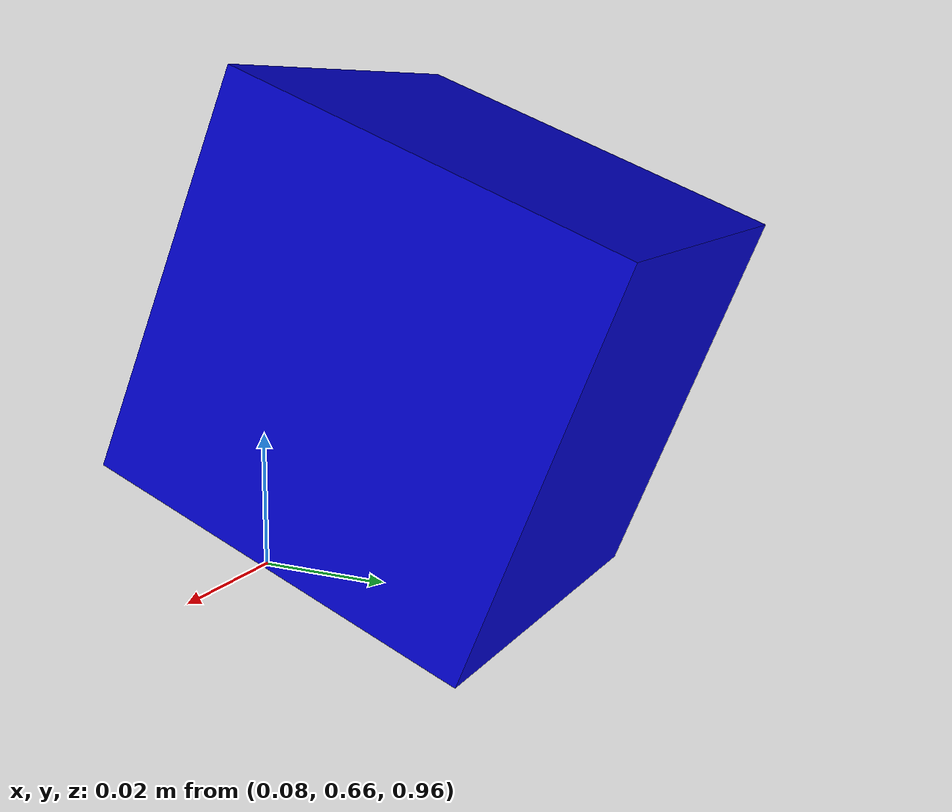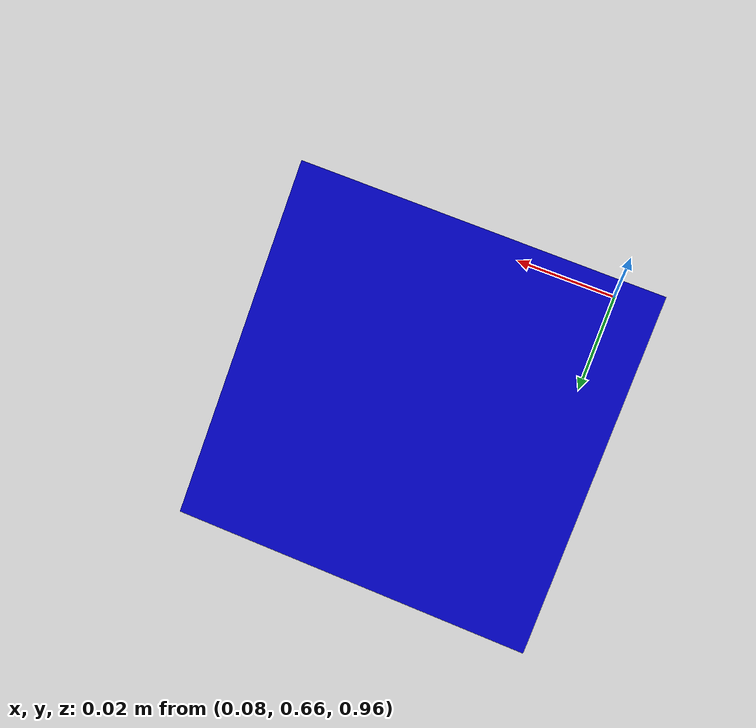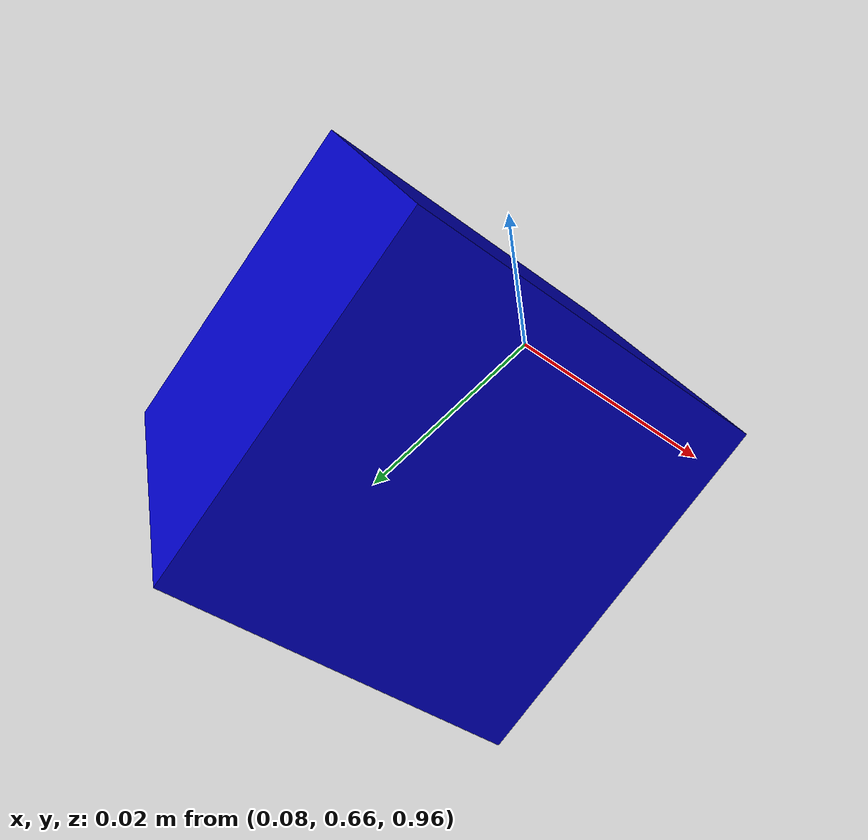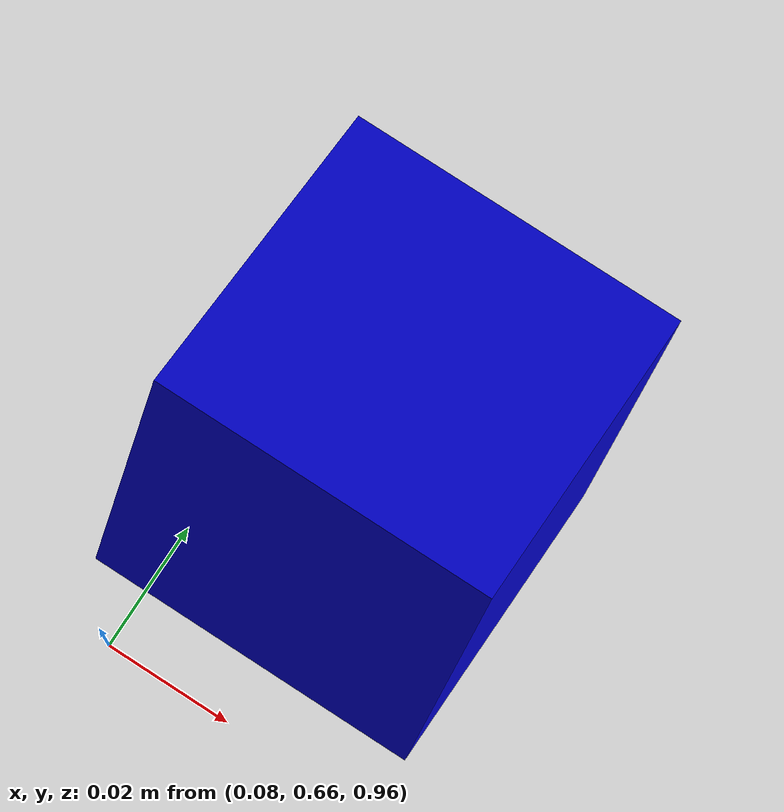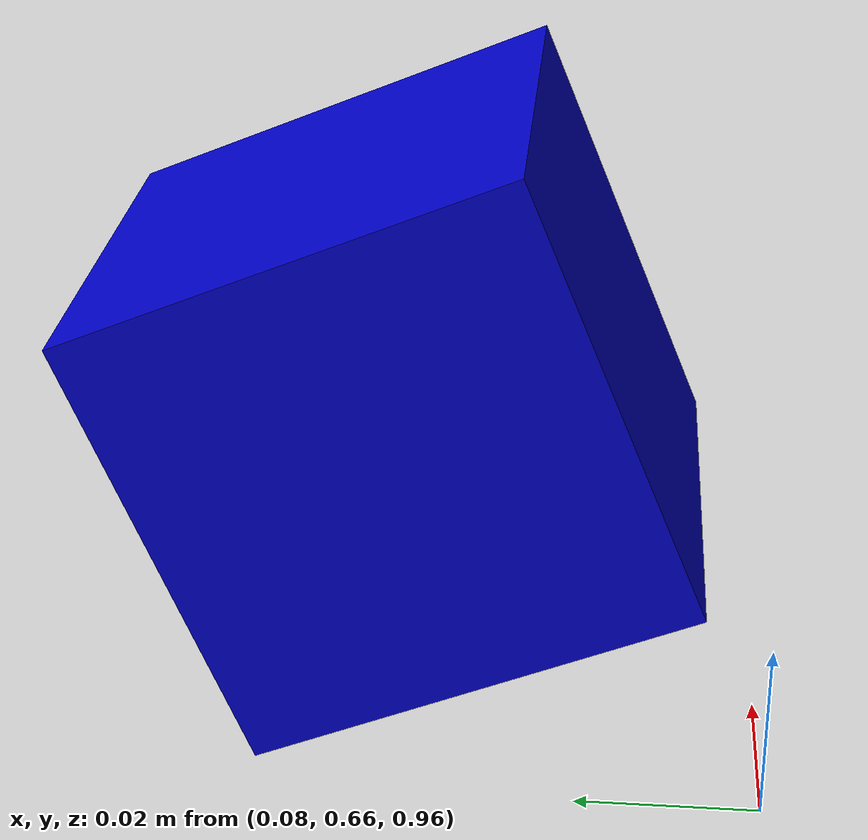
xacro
<?xml version="1.0"?>
<robot name="krabby_campi"
  xmlns:xacro="http://www.ros.org/wiki/xacro">
  <xacro:property name="PI" value="3.1415926535897931"/>
  <xacro:property name="cameraSize" value="0.05"/>
  <xacro:property name="cameraMass" value="0.1"/>

  <xacro:include filename="$(find krabi_description)/urdf/krabby_campi.gazebo"/>
  <xacro:include filename="$(find krabi_description)/urdf/materials.xacro"/>
  <xacro:include filename="$(find krabi_description)/urdf/macros.xacro"/>

  <link name="camera_campi_link">
    <collision>
      <origin xyz="0 0 0" rpy="0 0 0"/>
      <geometry>
        <box size="${cameraSize} ${cameraSize} ${cameraSize}"/>
      </geometry>
    </collision>

    <visual>
      <origin xyz="0 0 0" rpy="0 0 0"/>
      <geometry>
        <box size="${cameraSize} ${cameraSize} ${cameraSize}"/>
      </geometry>
      <material name="blue"/>
    </visual>

    <inertial>
      <mass value="${cameraMass}" />
      <origin xyz="0 0 0" rpy="0 0 0"/>
      <xacro:box_inertia m="${cameraMass}" x="${cameraSize}" y="${cameraSize}" z="${cameraSize}" />
    </inertial>
  </link>

  <link name="world" />

  <joint name="world_to_base_link=" type="fixed">
    <parent link="world"/>
    <child link="base_link_campi"/>
  </joint>

  <link name="base_link_campi" />

  <joint name="base_link_to_camera" type="fixed">
    <origin xyz="0.1 0.7 1" rpy="0 ${3*PI/8} ${-PI/2}"/>
    <parent link="base_link_campi"/>
    <child link="camera_campi_link"/>
  </joint>

</robot>

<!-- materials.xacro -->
<robot name="krabby"
    xmlns:xacro="http://www.ros.org/wiki/xacro">
    <material name="black">
        <color rgba="0.0 0.0 0.0 1.0"/>
    </material>

    <material name="blue">
        <color rgba="0.0 0.0 0.8 1.0"/>
    </material>

    <material name="green">
        <color rgba="0.0 0.8 0.0 1.0"/>
    </material>

    <material name="grey">
        <color rgba="0.2 0.2 0.2 1.0"/>
    </material>

    <material name="orange">
        <color rgba="${255/255} ${108/255} ${10/255} 1.0"/>
    </material>

    <material name="brown">
        <color rgba="${222/255} ${207/255} ${195/255} 1.0"/>
    </material>

    <material name="red">
        <color rgba="0.8 0.0 0.0 1.0"/>
    </material>

    <material name="white">
        <color rgba="1.0 1.0 1.0 1.0"/>
    </material>
</robot>

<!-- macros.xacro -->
<robot name="krabby"
    xmlns:xacro="http://www.ros.org/wiki/xacro">
    <xacro:macro name="cylinder_inertia" params="m r h">
        <inertia ixx="${m*(3*r*r+h*h)/12}" ixy="0" ixz="0" iyy="${m*(3*r*r+h*h)/12}" iyz="0" izz="${m*r*r/2}" />
    </xacro:macro>

    <xacro:macro name="box_inertia" params="m x y z">
        <inertia ixx="${m*(y*y+z*z)/12}" ixy="0" ixz="0" iyy="${m*(x*x+z*z)/12}" iyz="0" izz="${m*(x*x+z*z)/12}" />
    </xacro:macro>

    <xacro:macro name="sphere_inertia" params="m r">
        <inertia ixx="${2*m*r*r/5}" ixy="0" ixz="0" iyy="${2*m*r*r/5}" iyz="0" izz="${2*m*r*r/5}" />
    </xacro:macro>

    <xacro:macro name="wheel" params="lr parent tX:=0 tY:=0 tZ:=0">

        <link name="${lr}_wheel">
            <collision>
                <origin xyz="0 0 0" rpy="0 ${PI/2} ${PI/2}"/>
                <geometry>
                    <!-- Good odometry, more realistic -->
                    <sphere radius="${wheelRadius}" />

                    <!-- Bad odometry, stress-test for localisation -->
                </geometry>
            </collision>

            <visual>
                <origin xyz="0 0 0" rpy="0 ${PI/2} ${PI/2}"/>
                <geometry>
                    <cylinder length="${wheelWidth}" radius="${wheelRadius}"/>
                </geometry>
                <material name="black"/>
            </visual>

            <inertial>
                <origin xyz="0 0 0" rpy="0 ${PI/2} ${PI/2}"/>
                <mass value="${wheelMass}"/>
                <xacro:cylinder_inertia m="${wheelMass}" r="${wheelRadius}" h="${wheelWidth}"/>
            </inertial>
        </link>

        <gazebo reference="${lr}_wheel">
            <gravity>true</gravity>
            <mu1>50000000</mu1>
            <mu2>5000000</mu2>
            <kp>10000000</kp>
            <kd>1</kd>
            <fdir1>1 0 0</fdir1>
            <minDepth>0.0001</minDepth>
            <maxContacts>1</maxContacts>
            <material>Gazebo/Black</material>
        </gazebo>

        <joint name="${lr}_wheel_hinge" type="continuous">
            <parent link="${parent}"/>
            <child link="${lr}_wheel"/>
            <origin xyz="${tX} ${tY} ${tZ}" rpy="0 0 0"/>
            <axis xyz="0 1 0" rpy="0 0 0"/>
            <limit effort="100" velocity="100"/>
            <joint_properties damping="0.0" friction="0.0"/>
        </joint>

    </xacro:macro>

    <xacro:macro name="caster_wheel" params="parent name tX tY">
        <link name="${name}">
            <collision>
                <origin xyz="${tX} ${tY} 0" rpy="0 0 0"/>
                <geometry>
                    <sphere radius="${casterWheelRadius}"/>
                </geometry>
            </collision>

            <visual>
                <origin xyz="${tX} ${tY} 0" rpy="0 0 0"/>
                <geometry>
                    <sphere radius="${casterWheelRadius}"/>
                </geometry>
                <material name="red"/>
            </visual>

            <inertial>
                <origin xyz="${tX} ${tY} ${casterWheelRadius}" rpy="0 0 0"/>
                <mass value="${casterWheelMass}"/>
                <xacro:sphere_inertia m="${casterWheelMass}" r="${casterWheelRadius}"/>
            </inertial>
        </link>
        <joint name="${name}_joint" type="fixed">
            <parent link="${parent}"/>
            <child link="${name}"/>
        </joint>
        <gazebo reference="${name}">
            <mu1>0.01</mu1>
            <mu2>0.01</mu2>
            <material>Gazebo/Red</material>
        </gazebo>
    </xacro:macro>

</robot>
